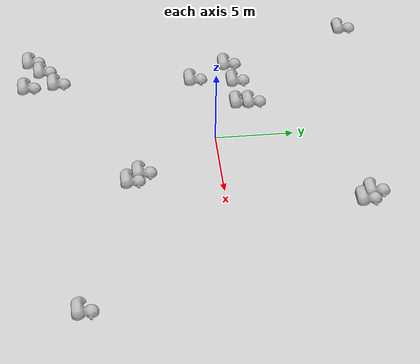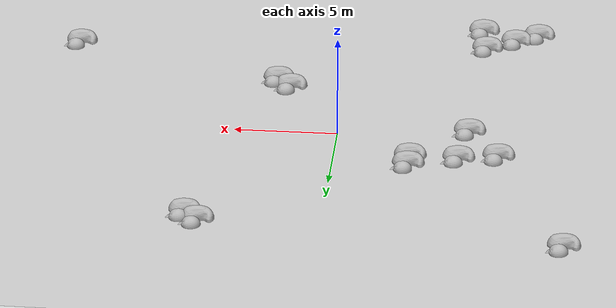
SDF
<sdf version="1.6">
 <world name="default">
  <light name="sun" type="directional">
   <pose>0 0 10 0 -0 0</pose>
   <diffuse>0.8 0.8 0.8 1</diffuse>
   <specular>0.2 0.2 0.2 1</specular>
   <attenuation>
    <range>1000</range>
    <constant>0.9</constant>
    <linear>0.01</linear>
    <quadratic>0.001</quadratic>
   </attenuation>
   <direction>-0.5 0.1 -0.9</direction>
  </light>
  <model name="ground_plane">
   <static>1</static>
   <link name="link">
    <collision name="collision">
     <geometry><plane><normal>0 0 1</normal><size>100 100</size></plane></geometry>
     <surface>
      <contact><collide_bitmask>65535</collide_bitmask></contact>
      <friction><ode><mu>100</mu><mu2>50</mu2></ode></friction>
     </surface>
    </collision>
    <visual name="visual">
     <cast_shadows>0</cast_shadows>
     <geometry><plane><normal>0 0 1</normal><size>100 100</size></plane></geometry>
     <material>
      <script><uri>file://media/materials/scripts/gazebo.material</uri><name>Gazebo/Grey</name></script>
     </material>
    </visual>
   </link>
  </model>
  <gravity>0 0 -9.8</gravity>
  <magnetic_field>6e-06 2.3e-05 -4.2e-05</magnetic_field>
  <atmosphere type="adiabatic"/>
  <physics name="default_physics" default="0" type="ode">
   <max_step_size>0.001</max_step_size>
   <real_time_factor>1</real_time_factor>
   <real_time_update_rate>1000</real_time_update_rate>
  </physics>
  <scene><ambient>0.4 0.4 0.4 1</ambient><background>0.7 0.7 0.7 1</background><shadows>1</shadows></scene>
  <spherical_coordinates>
   <surface_model>EARTH_WGS84</surface_model>
   <latitude_deg>0</latitude_deg>
   <longitude_deg>0</longitude_deg>
   <elevation>0</elevation>
   <heading_deg>0</heading_deg>
  </spherical_coordinates>
  <model name="fireduck">
   <link name="body">
    <visual name="visual">
     <geometry><mesh><uri>model://fireduck/meshes/FireTest.dae</uri></mesh></geometry>
     <material><shader type="pixel"/></material>
    </visual>
   </link>
   <static>1</static>
   <pose>-3.7276 1.26359 0 0 -0 0</pose>
  </model>
  <model name="fireduck_0">
   <link name="body">
    <visual name="visual">
     <geometry><mesh><uri>model://fireduck/meshes/FireTest.dae</uri></mesh></geometry>
     <material><shader type="pixel"/></material>
    </visual>
   </link>
   <static>1</static>
   <pose>-3.69075 2.08568 0 0 -0 0</pose>
  </model>
  <model name="fireduck_1">
   <link name="body">
    <visual name="visual">
     <geometry><mesh><uri>model://fireduck/meshes/FireTest.dae</uri></mesh></geometry>
     <material><shader type="pixel"/></material>
    </visual>
   </link>
   <static>1</static>
   <pose>-7.92628 0.937513 0 0 -0 0</pose>
  </model>
  <model name="fireduck_2">
   <link name="body">
    <visual name="visual">
     <geometry><mesh><uri>model://fireduck/meshes/FireTest.dae</uri></mesh></geometry>
     <material><shader type="pixel"/></material>
    </visual>
   </link>
   <static>1</static>
   <pose>-6.04238 1.2978 0 0 -0 0</pose>
  </model>
  <model name="fireduck_3">
   <link name="body">
    <visual name="visual">
     <geometry><mesh><uri>model://fireduck/meshes/FireTest.dae</uri></mesh></geometry>
     <material><shader type="pixel"/></material>
    </visual>
   </link>
   <static>1</static>
   <pose>3.32484 -6.36156 0 0 -0 0</pose>
  </model>
  <model name="fireduck_4">
   <link name="body">
    <visual name="visual">
     <geometry><mesh><uri>model://fireduck/meshes/FireTest.dae</uri></mesh></geometry>
     <material><shader type="pixel"/></material>
    </visual>
   </link>
   <static>1</static>
   <pose>2.62905 -5.60245 0 0 -0 0</pose>
  </model>
  <model name="fireduck_5">
   <link name="body">
    <visual name="visual">
     <geometry><mesh><uri>model://fireduck/meshes/FireTest.dae</uri></mesh></geometry>
     <material><shader type="pixel"/></material>
    </visual>
   </link>
   <static>1</static>
   <pose>-6.53463 -12.6849 0 0 -0 0</pose>
  </model>
  <model name="fireduck_6">
   <link name="body">
    <visual name="visual">
     <geometry><mesh><uri>model://fireduck/meshes/FireTest.dae</uri></mesh></geometry>
     <material><shader type="pixel"/></material>
    </visual>
   </link>
   <static>1</static>
   <pose>-8.21904 -11.6177 0 0 -0 0</pose>
  </model>
  <model name="fireduck_7">
   <link name="body">
    <visual name="visual">
     <geometry><mesh><uri>model://fireduck/meshes/FireTest.dae</uri></mesh></geometry>
     <material><shader type="pixel"/></material>
    </visual>
   </link>
   <static>1</static>
   <pose>-9.34853 -12.3675 0 0 -0 0</pose>
  </model>
  <model name="fireduck_8">
   <link name="body">
    <visual name="visual">
     <geometry><mesh><uri>model://fireduck/meshes/FireTest.dae</uri></mesh></geometry>
     <material><shader type="pixel"/></material>
    </visual>
   </link>
   <static>1</static>
   <pose>-6.79766 -10.6998 0 0 -0 0</pose>
  </model>
  <model name="fireduck_9">
   <link name="body">
    <visual name="visual">
     <geometry><mesh><uri>model://fireduck/meshes/FireTest.dae</uri></mesh></geometry>
     <material><shader type="pixel"/></material>
    </visual>
   </link>
   <static>1</static>
   <pose>6.26166 7.76312 0 0 -0 0</pose>
  </model>
  <model name="fireduck_10">
   <link name="body">
    <visual name="visual">
     <geometry><mesh><uri>model://fireduck/meshes/FireTest.dae</uri></mesh></geometry>
     <material><shader type="pixel"/></material>
    </visual>
   </link>
   <static>1</static>
   <pose>5.59803 8.39253 0 0 -0 0</pose>
  </model>
  <model name="fireduck_11">
   <link name="body">
    <visual name="visual">
     <geometry><mesh><uri>model://fireduck/meshes/FireTest.dae</uri></mesh></geometry>
     <material><shader type="pixel"/></material>
    </visual>
   </link>
   <static>1</static>
   <pose>13.6824 -9.652 0 0 -0 0</pose>
  </model>
  <model name="fireduck_12">
   <link name="body">
    <visual name="visual">
     <geometry><mesh><uri>model://fireduck/meshes/FireTest.dae</uri></mesh></geometry>
     <material><shader type="pixel"/></material>
    </visual>
   </link>
   <static>1</static>
   <pose>-6.41453 -1.53082 0 0 -0 0</pose>
  </model>
  <model name="fireduck_13">
   <link name="body">
    <visual name="visual">
     <geometry><mesh><uri>model://fireduck/meshes/FireTest.dae</uri></mesh></geometry>
     <material><shader type="pixel"/></material>
    </visual>
   </link>
   <static>1</static>
   <pose>-11.3082 9.4761 0 0 -0 0</pose>
  </model>
 </world>
</sdf>
